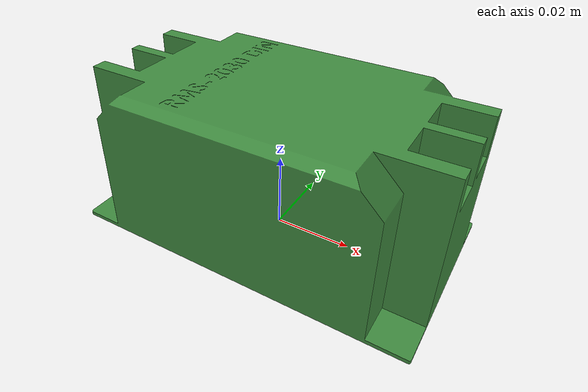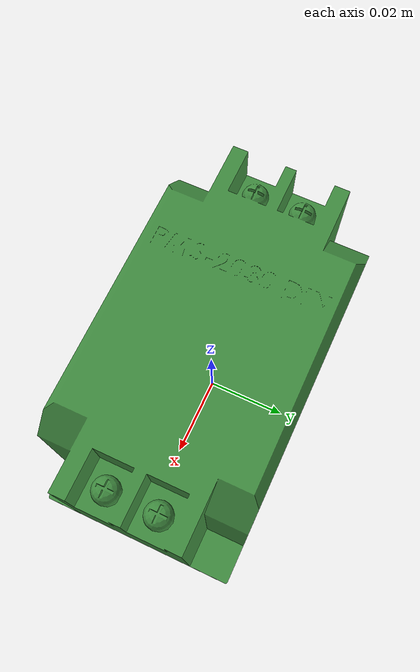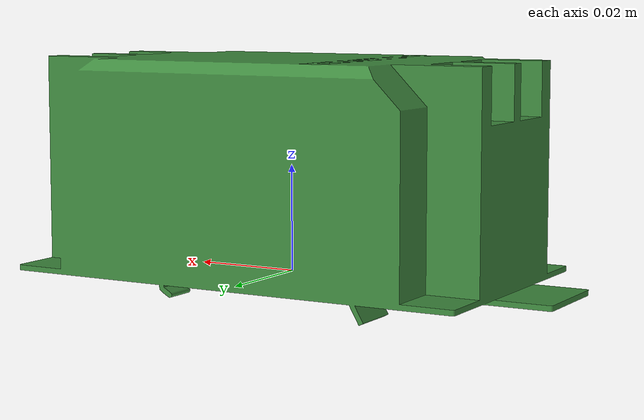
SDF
<?xml version="1.0" ?>
<sdf version="1.6">
  <model name="noise_filter_rms_2030_din">
    <link name="link">
      <gravity>false</gravity>
      <visual name="visual">
        <geometry>
          <mesh>
            <uri>file:///root/workcell_ws_classic/src/descriptions/ur_description/meshes/feeder/elec/objects/Noise_filter_RMS-2030-DIN.STL</uri>
            <scale>1 1 1</scale>
          </mesh>
        </geometry>
        <material>
          <!-- dark green/metallic -->
          <ambient>0.2 0.5 0.2 1</ambient>
          <diffuse>0.25 0.55 0.25 1</diffuse>
          <specular>0.9 0.9 0.9 1</specular>
          <emissive>0 0 0 1</emissive>
        </material>
      </visual>

        <inertial>
          <mass>0.4</mass>
          <inertia>
            <ixx>0.001</ixx>
            <ixy>0</ixy>
            <ixz>0</ixz>
            <iyy>0.001</iyy>
            <iyz>0</iyz>
            <izz>0.001</izz>
          </inertia>
        </inertial>
    </link>
  </model>
</sdf>
